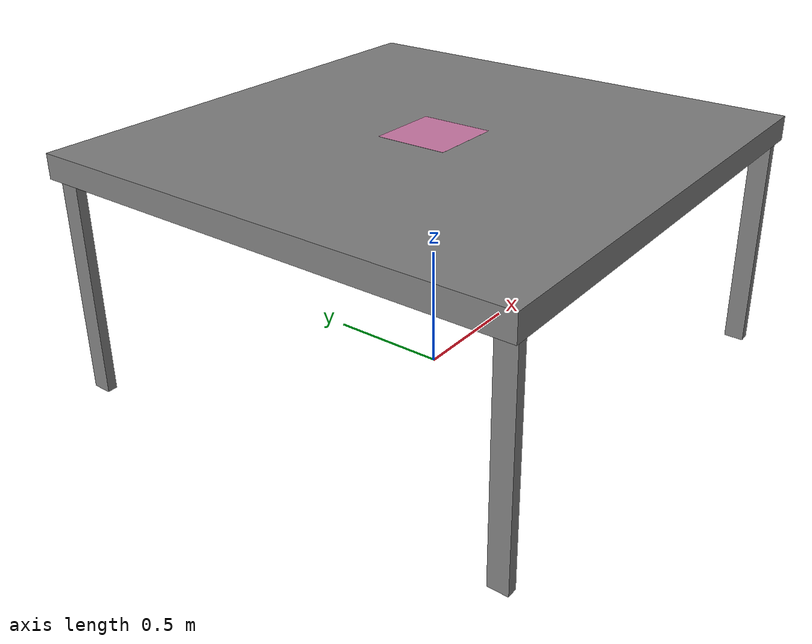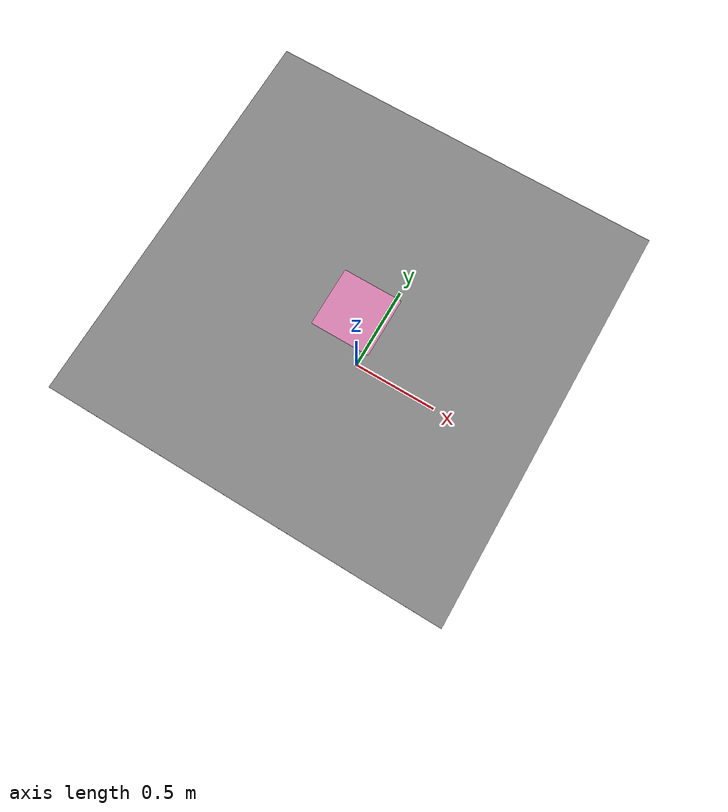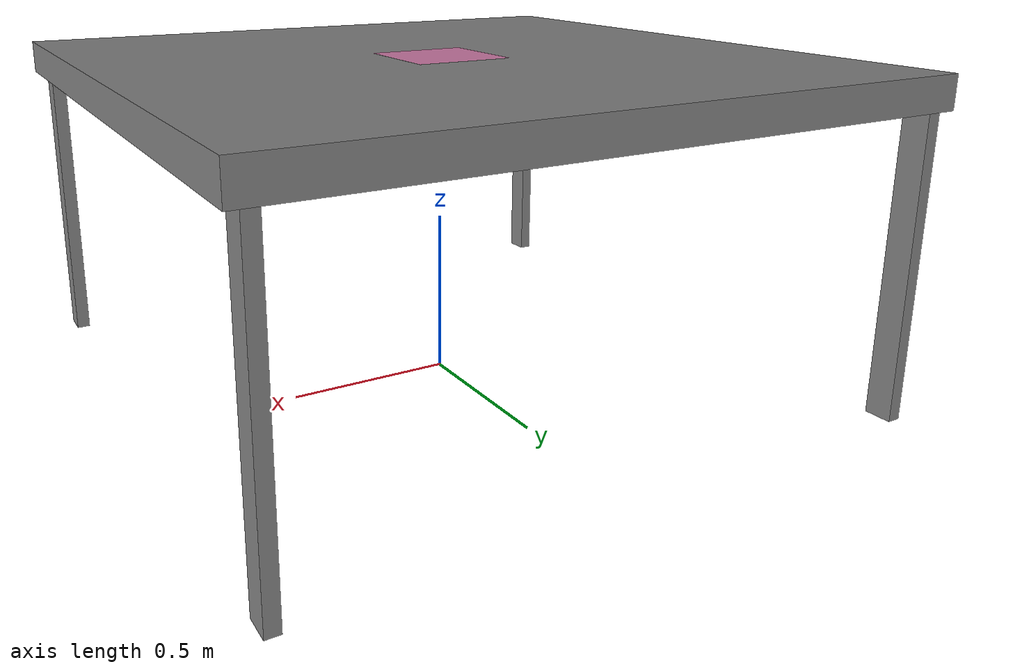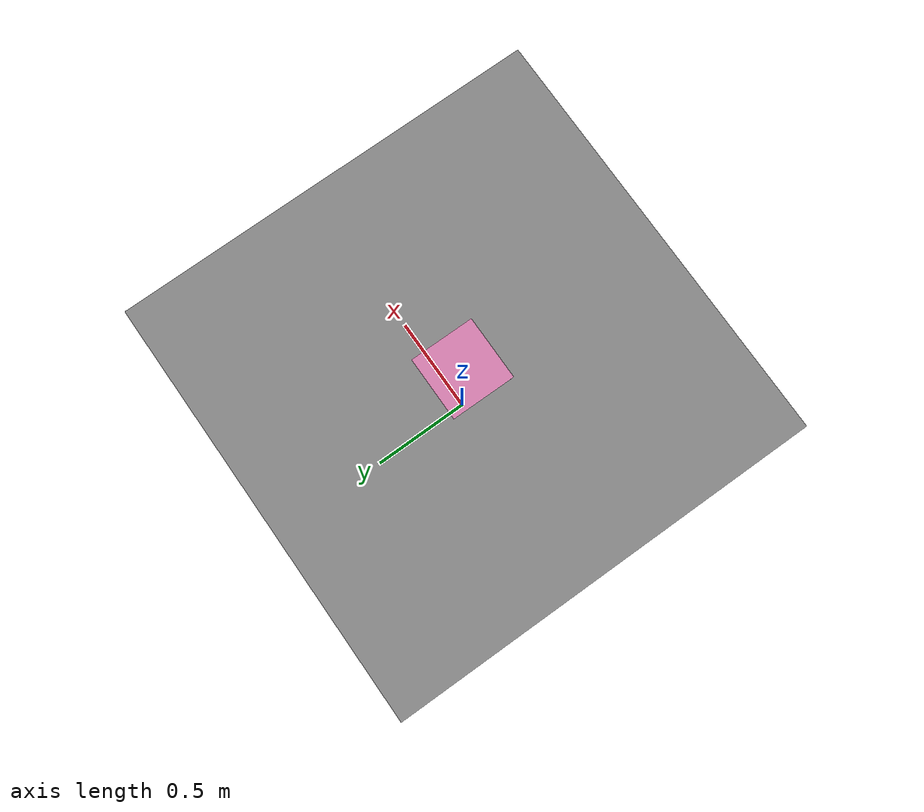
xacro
<?xml version="1.0"?>
<robot xmlns:xacro="http://www.ros.org/wiki/xacro" name="target_plane_on_table">
  <xacro:arg name="origin.x" default="0"/>
  <xacro:arg name="origin.y" default="0"/>
  <xacro:arg name="origin.z" default="0"/>
  <xacro:arg name="enableGzPlugin" default="true"/>
  <xacro:arg name="scale" default="0.15"/>
  <xacro:property name="toolMass" value="0.1"/>
  <xacro:property name="toolLength" value="0.40"/>
  <xacro:property name="toolRadius" value="0.005"/>
  <xacro:property name="tableLength" value="2"/>
  <xacro:property name="tableWidth" value="2"/>
  <xacro:property name="tableHeight" value="1"/>

  <link name="world"/>

  <gazebo reference="world">
    <static>true</static>
    <turnGravityOff>true</turnGravityOff>
  </gazebo>

  <xacro:include filename="$(find surgical_simulator)/models/table.urdf.xacro"/>

  <xacro:model_table name="table"
                    parent="world"
                    length="${tableLength}"
                    width="${tableWidth}"
                    height="${tableHeight}"
                    plate_thickness="0.1"
                    color="grey">
    <origin xyz="${$(arg origin.x)-tableLength/2} ${$(arg origin.y)+tableWidth/2} ${tableHeight}" rpy="0 0 0"/>
  </xacro:model_table>

  <gazebo reference="table_plate_link">
   <material>Gazebo/Blue</material>
  </gazebo>

  <gazebo reference="table_leg_0_link">
   <material>Gazebo/Blue</material>
  </gazebo>

  <gazebo reference="table_leg_1_link">
   <material>Gazebo/Blue</material>
  </gazebo>

  <gazebo reference="table_leg_2_link">
   <material>Gazebo/Blue</material>
  </gazebo>

  <gazebo reference="table_leg_3_link">
   <material>Gazebo/Blue</material>
  </gazebo>

  <joint name="target_table_joint" type="fixed">
    <origin xyz="${tableLength/2} ${-tableWidth/2} 0" rpy="0 0 0"/>
    <parent link="table_plate_link"/>
    <child link="target/base_link"/>
  </joint>

  <link name="target/base_link">
    <inertial>
      <origin
        xyz="0 0 0"
        rpy="0 0 0" />
      <mass
        value="1" />
      <inertia
        ixx="1"
        ixy="0"
        ixz="0"
        iyy="1"
        iyz="0"
        izz="1" />
    </inertial>
    <visual name="visual">
      <origin
        xyz="0 0 0"
        rpy="0 0 0" />
      <geometry>
        <mesh
            filename="package://foot_control_xy/models/target/meshes/target.dae" scale="$(arg scale) $(arg scale) ${0.001*$(arg scale)}"/>
       </geometry>
      </visual>
  </link>
</robot>

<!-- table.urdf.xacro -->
<robot xmlns:xacro="http://www.ros.org/wiki/xacro">

<xacro:property name="leg_width" value="0.08" />
<xacro:property name="border_offset" value="0.055" />

<!-- conversions -->
<!-- I couldn't make the simulation work with realistic values, so I tweaked the conversion values -->
<xacro:property name="mm_to_m" value="0.001"/>
<xacro:property name="mm2_to_m2" value="0.000001"/>
<xacro:property name="gr_to_Kg" value="0.001"/>

<!-- not so negligible, otherwise simulation fails -->
<xacro:property name="table_mass" value="${40000*gr_to_Kg}"/>
<xacro:property name="table_inertia">
    <origin xyz="0 0 0"/>
    <mass value="${table_mass}"/>
    <inertia ixx="${table_mass * 10 * mm2_to_m2}" ixy="0.0" ixz="0.0" iyy="${table_mass * 10 * mm2_to_m2}" iyz="0.0" izz="${table_mass * 10 * mm2_to_m2}"/>
</xacro:property>

<material name="green">
    <color rgba="0.0 1.0 0.0 1.0"/>
</material>

<material name="red">
    <color rgba="1.0 0.0 0.0 1.0"/>
</material>

<material name="blue">
    <color rgba="0.0 0.0 1.0 1.0"/>
</material>

<material name="grey">
    <color rgba="0.5 0.5 0.5 1.0"/>
</material>

<xacro:macro name="table_leg" params="parent name *origin color">
    <joint name="${name}_joint" type="fixed">
        <xacro:insert_block name="origin"/>
        <parent link="${parent}" />
        <child link="${name}_link" />
    </joint>
    <link name="${name}_link">
        <inertial>
            <xacro:insert_block name="table_inertia"/>
        </inertial>
		<visual>
			<geometry>
				<box size="${leg_width/2} -${leg_width} ${height - plate_thickness}"/>
			</geometry>
			<material name="${color}"/>
		</visual>
		<collision>
			<geometry>
				<box size="${leg_width/2} -${leg_width} ${height - plate_thickness}"/>
			</geometry>
		</collision>
    </link>

    <gazebo reference="${name}_link">
    </gazebo>
</xacro:macro>

<xacro:macro name="model_table" params="parent name *origin length width height plate_thickness color">
    <joint name="${parent}_${name}_base_joint" type="fixed">
        <xacro:insert_block name="origin"/>
        <parent link="${parent}"/>
        <child link="${name}_plate_link"/>
    </joint>
    <link name="${name}_plate_link">
        <inertial>
            <xacro:insert_block name="table_inertia"/>
        </inertial>
        <visual>
            <origin xyz="${1/2 * length} ${-1/2 * width} ${-1/2 * plate_thickness}"/>
            <geometry>
                <box size="${length} ${width} ${plate_thickness}"/>
			</geometry>
            <material name="${color}">
            </material>
		</visual>
        <collision>
            <origin xyz="${1/2 * length} ${-1/2 * width} ${-1/2 * plate_thickness}"/>
            <geometry>
                <box size="${length} ${width} ${plate_thickness}"/>
            </geometry>
        </collision>
    </link>
    <xacro:table_leg parent="${name}_plate_link" name="${name}_leg_0" color="${color}">
        <origin xyz="${border_offset} -${border_offset} -${1/2 * (plate_thickness + height)}"/>
    </xacro:table_leg>
    <xacro:table_leg parent="${name}_plate_link" name="${name}_leg_1" color="${color}">
        <origin xyz="${length - border_offset} -${border_offset} -${1/2 * (plate_thickness + height)}"/>
    </xacro:table_leg>
    <xacro:table_leg parent="${name}_plate_link" name="${name}_leg_2" color="${color}">
        <origin xyz="${border_offset} -${width - border_offset} -${1/2 * (plate_thickness + height)}"/>
    </xacro:table_leg>
    <xacro:table_leg parent="${name}_plate_link" name="${name}_leg_3" color="${color}">
        <origin xyz="${length - border_offset} -${width - border_offset} -${1/2 * (plate_thickness + height)}"/>
    </xacro:table_leg>

    <gazebo reference="${name}_plate_link">
    </gazebo>

</xacro:macro>
</robot>
